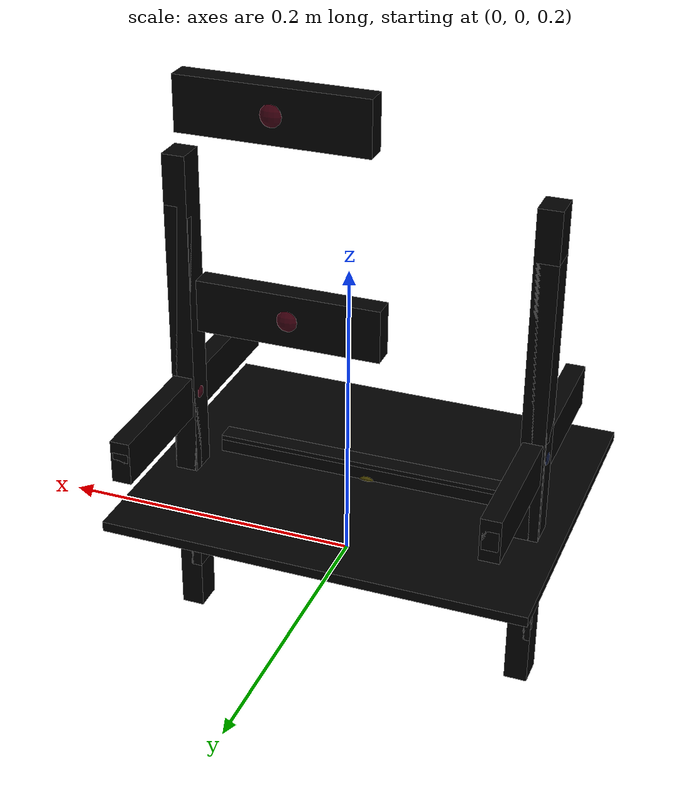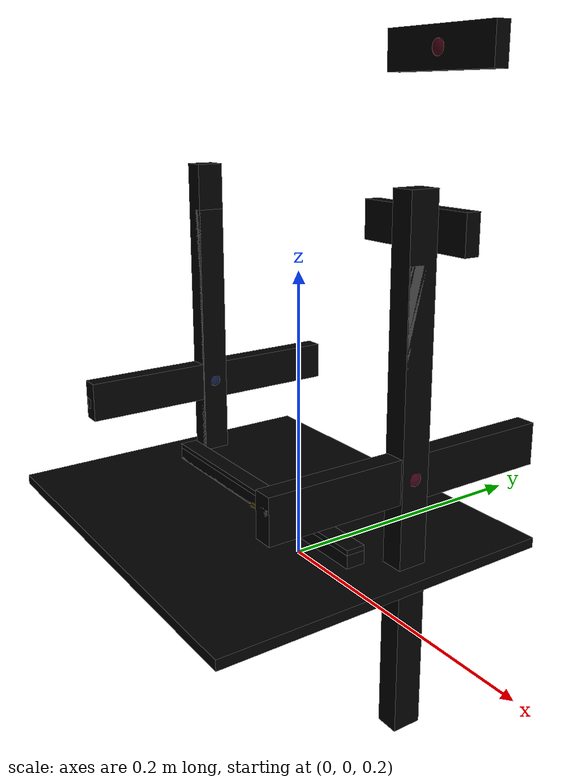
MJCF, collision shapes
<mujoco model="chair_ivar_0668">
  <custom>
    <numeric data="0.371978 0.069044 0.007593 0.500517 -0.499483 0.500514 0.499485" name="0_part0_initpos" />
    <numeric data="0.024402 -0.027272 0.018791 1.2e-05 -0.999999 0.001077 -0.0" name="4_part4_initpos" />
    <numeric data="0.017933 0.225411 0.014621 0.999111 0.002904 -0.000122 -0.042059" name="3_part3_initpos" />
    <numeric data="0.021304 0.340442 0.015788 0.997245 0.069882 0.001738 0.024808" name="2_part2_initpos" />
    <numeric data="-0.327291 0.05709 0.007492 0.500002 -0.499999 -0.499999 -0.500001" name="1_part1_initpos" />
  </custom>
  <asset>
    <mesh file="chair_ivar_0668/0.stl" name="part0" scale="0.00050688 0.00050688 0.00050688" />
    <mesh file="chair_ivar_0668/4.stl" name="part4" scale="0.00050688 0.00050688 0.00050688" />
    <mesh file="chair_ivar_0668/3.stl" name="part3" scale="0.00050688 0.00050688 0.00050688" />
    <mesh file="chair_ivar_0668/2.stl" name="part2" scale="0.00050688 0.00050688 0.00050688" />
    <mesh file="chair_ivar_0668/1.stl" name="part1" scale="0.00050688 0.00050688 0.00050688" />
  </asset>
  <worldbody>
  <inertial mass="5.0" diaginertia="0.05 0.05 0.05" pos="0 0 0" />
  <body name="combined_body" pos="0.11 0 0.29679392531250004" quat="1 0 0 0"><geom conaffinity="0" contype="0" density="0" mesh="part0" name="0_part0_mesh" pos="-0.0 0.0 0.0" rgba="0.82 0.71 0.55 1" type="mesh" quat="1 0 0 0" />
      <geom density="50" name="noviz_collision_0_part0_0" pos="-0.0 0.0 0.0" quat="1 0 0 0" rgba="0 0 0 0" size="0.007603199999999998 0.009630719999999997 0.1317888" solref="0.001 1" type="box" />
      <geom density="50" name="noviz_collision_0_part0_1" pos="-0.0 0.0 0.0" quat="1 0 0 0" rgba="0 0 0 0" size="0.007603199999999998 0.009630719999999997 0.164736" solref="0.001 1" type="box" />
      <geom density="50" name="noviz_collision_0_part0_2" pos="-0.0 0.0 0.0" quat="1 0 0 0" rgba="0 0 0 0" size="0.007603199999999998 0.0088704 0.12418559999999997" solref="0.001 1" type="box" />
      <geom density="50" name="noviz_collision_0_part0_3" pos="-0.0 0.0 0.0" quat="1 0 0 0" rgba="0 0 0 0" size="0.006335999999999999 0.09884159999999999 0.0139392" solref="0.001 1" type="box" />
      <geom density="50" name="noviz_collision_0_part0_4" pos="-0.0 0.0 0.0" quat="1 0 0 0" rgba="0 0 0 0" size="0.005068799999999999 0.09884159999999999 0.006335999999999999" solref="0.001 1" type="box" />
      <site name="0_part0_horizontal_radius_site" pos="-0.0 0.0 0.0" quat="1 0 0 0" rgba="0 0 0 0" size="0.0088" />
      <site name="0_part0_top_site" pos="-0.0 0.0 0.0" quat="1 0 0 0" rgba="0 0 0 0" size="0.0088" />
      <site name="0_part0_bottom_site" pos="-0.0 0.0 0.0" quat="1 0 0 0" rgba="0 0 0 0" size="0.0088" />
      <site name="0_part0_corner_site8" pos="-0.0 0.0 0.0" quat="1 0 0 0" rgba="0 0 0 0" size="0.010137599999999998" />
      <site name="0_part0_corner_site7" pos="-0.0 0.0 0.0" quat="1 0 0 0" rgba="0 0 0 0" size="0.010137599999999998" />
      <site name="0_part0_corner_site6" pos="-0.0 0.0 0.0" quat="1 0 0 0" rgba="0 0 0 0" size="0.010137599999999998" />
      <site name="0_part0_corner_site5" pos="-0.0 0.0 0.0" quat="1 0 0 0" rgba="0 0 0 0" size="0.010137599999999998" />
      <site name="0_part0_corner_site4" pos="-0.0 0.0 0.0" quat="1 0 0 0" rgba="0 0 0 0" size="0.010137599999999998" />
      <site name="0_part0_corner_site3" pos="-0.0 0.0 0.0" quat="1 0 0 0" rgba="0 0 0 0" size="0.010137599999999998" />
      <site name="0_part0_corner_site2" pos="-0.0 0.0 0.0" quat="1 0 0 0" rgba="0 0 0 0" size="0.010137599999999998" />
      <site name="0_part0_corner_site1" pos="-0.0 0.0 0.0" quat="1 0 0 0" rgba="0 0 0 0" size="0.010137599999999998" />
      <site name="lleg-back,0,conn_site2" pos="-0.0 0.0 0.0" quat="1 0 0 0" rgba="0.9019 0.0980 0.2941 0.3" size="0.0088" />
      <site name="lleg-back,0,conn_site1" pos="-0.0 0.0 0.0" quat="1 0 0 0" rgba="0.9019 0.0980 0.2941 0.3" size="0.0088" />
      <site name="lleg-seat,0,conn_site1" pos="-0.0 0.0 0.0" quat="1 0 0 0" rgba="0.2352 0.7058 0.2941 0.3" size="0.0088" />
    <geom conaffinity="0" contype="0" density="0" mesh="part4" name="4_part4_mesh" pos="-0.115872764806656 -0.026949470625791998 -0.05861101639219199" rgba="0.82 0.71 0.55 1" type="mesh" quat="1 0 0 0" />
      <geom density="50" name="noviz_collision_4_part4_0" pos="-0.115872764806656 -0.026949470625791998 -0.05861101639219199" quat="1 0 0 0" rgba="0 0 0 0" size="0.138403584 0.114048 0.00329472" solref="0.001 1" type="box" />
      <geom density="50" name="noviz_collision_4_part4_1" pos="-0.115872764806656 -0.026949470625791998 -0.05861101639219199" quat="1 0 0 0" rgba="0 0 0 0" size="0.10391039999999999 0.006335999999999999 0.011911679999999997" solref="0.001 1" type="box" />
      <geom density="50" name="noviz_collision_4_part4_2" pos="-0.115872764806656 -0.026949470625791998 -0.05861101639219199" quat="1 0 0 0" rgba="0 0 0 0" size="0.10391039999999999 0.006335999999999999 0.015206399999999997" solref="0.001 1" type="box" />
      <geom density="50" name="noviz_collision_4_part4_3" pos="-0.115872764806656 -0.026949470625791998 -0.05861101639219199" quat="1 0 0 0" rgba="0 0 0 0" size="0.10391039999999999 0.005068799999999999 0.00329472" solref="0.001 1" type="box" />
      <site name="4_part4_horizontal_radius_site" pos="-0.115872764806656 -0.026949470625791998 -0.05861101639219199" quat="1 0 0 0" rgba="0 0 0 0" size="0.0088" />
      <site name="4_part4_top_site" pos="-0.115872764806656 -0.026949470625791998 -0.05861101639219199" quat="1 0 0 0" rgba="0 0 0 0" size="0.0088" />
      <site name="4_part4_bottom_site" pos="-0.115872764806656 -0.026949470625791998 -0.05861101639219199" quat="1 0 0 0" rgba="0 0 0 0" size="0.0088" />
      <site name="4_part4_corner_site8" pos="-0.115872764806656 -0.026949470625791998 -0.05861101639219199" quat="1 0 0 0" rgba="0 0 0 0" size="0.010137599999999998" />
      <site name="4_part4_corner_site7" pos="-0.115872764806656 -0.026949470625791998 -0.05861101639219199" quat="1 0 0 0" rgba="0 0 0 0" size="0.010137599999999998" />
      <site name="4_part4_corner_site6" pos="-0.115872764806656 -0.026949470625791998 -0.05861101639219199" quat="1 0 0 0" rgba="0 0 0 0" size="0.010137599999999998" />
      <site name="4_part4_corner_site5" pos="-0.115872764806656 -0.026949470625791998 -0.05861101639219199" quat="1 0 0 0" rgba="0 0 0 0" size="0.010137599999999998" />
      <site name="4_part4_corner_site4" pos="-0.115872764806656 -0.026949470625791998 -0.05861101639219199" quat="1 0 0 0" rgba="0 0 0 0" size="0.010137599999999998" />
      <site name="4_part4_corner_site3" pos="-0.115872764806656 -0.026949470625791998 -0.05861101639219199" quat="1 0 0 0" rgba="0 0 0 0" size="0.010137599999999998" />
      <site name="4_part4_corner_site2" pos="-0.115872764806656 -0.026949470625791998 -0.05861101639219199" quat="1 0 0 0" rgba="0 0 0 0" size="0.010137599999999998" />
      <site name="4_part4_corner_site1" pos="-0.115872764806656 -0.026949470625791998 -0.05861101639219199" quat="1 0 0 0" rgba="0 0 0 0" size="0.010137599999999998" />
      <site name="seat-rleg,0,conn_site1" pos="-0.115872764806656 -0.026949470625791998 -0.05861101639219199" quat="1 0 0 0" rgba="1.0 0.8823 0.0980 0.3" size="0.0088" />
      <site name="seat-lleg,0,conn_site1" pos="-0.115872764806656 -0.026949470625791998 -0.05861101639219199" quat="1 0 0 0" rgba="0.2352 0.7058 0.2941 0.3" size="0.0088" />
    <geom conaffinity="0" contype="0" density="0" mesh="part3" name="3_part3_mesh" pos="-0.115872961577472 0.12518058795264 0.244362872590848" rgba="0.82 0.71 0.55 1" type="mesh" quat="1 0 0 0" />
      <geom density="50" name="noviz_collision_3_part3_0" pos="-0.115872961577472 0.12518058795264 0.244362872590848" quat="1 0 0 0" rgba="0 0 0 0" size="0.05322239999999999 0.006335999999999999 0.015206399999999997" solref="0.001 1" type="box" />
      <geom density="50" name="noviz_collision_3_part3_1" pos="-0.115872961577472 0.12518058795264 0.244362872590848" quat="1 0 0 0" rgba="0 0 0 0" size="0.05322239999999999 0.006335999999999999 0.015206399999999997" solref="0.001 1" type="box" />
      <site name="3_part3_horizontal_radius_site" pos="-0.115872961577472 0.12518058795264 0.244362872590848" quat="1 0 0 0" rgba="0 0 0 0" size="0.0088" />
      <site name="3_part3_top_site" pos="-0.115872961577472 0.12518058795264 0.244362872590848" quat="1 0 0 0" rgba="0 0 0 0" size="0.0088" />
      <site name="3_part3_bottom_site" pos="-0.115872961577472 0.12518058795264 0.244362872590848" quat="1 0 0 0" rgba="0 0 0 0" size="0.0088" />
      <site name="3_part3_corner_site8" pos="-0.115872961577472 0.12518058795264 0.244362872590848" quat="1 0 0 0" rgba="0 0 0 0" size="0.010137599999999998" />
      <site name="3_part3_corner_site7" pos="-0.115872961577472 0.12518058795264 0.244362872590848" quat="1 0 0 0" rgba="0 0 0 0" size="0.010137599999999998" />
      <site name="3_part3_corner_site6" pos="-0.115872961577472 0.12518058795264 0.244362872590848" quat="1 0 0 0" rgba="0 0 0 0" size="0.010137599999999998" />
      <site name="3_part3_corner_site5" pos="-0.115872961577472 0.12518058795264 0.244362872590848" quat="1 0 0 0" rgba="0 0 0 0" size="0.010137599999999998" />
      <site name="3_part3_corner_site4" pos="-0.115872961577472 0.12518058795264 0.244362872590848" quat="1 0 0 0" rgba="0 0 0 0" size="0.010137599999999998" />
      <site name="3_part3_corner_site3" pos="-0.115872961577472 0.12518058795264 0.244362872590848" quat="1 0 0 0" rgba="0 0 0 0" size="0.010137599999999998" />
      <site name="3_part3_corner_site2" pos="-0.115872961577472 0.12518058795264 0.244362872590848" quat="1 0 0 0" rgba="0 0 0 0" size="0.010137599999999998" />
      <site name="3_part3_corner_site1" pos="-0.115872961577472 0.12518058795264 0.244362872590848" quat="1 0 0 0" rgba="0 0 0 0" size="0.010137599999999998" />
      <site name="back-lleg,0,conn_site2" pos="-0.115872961577472 0.12518058795264 0.244362872590848" quat="1 0 0 0" rgba="0.9019 0.0980 0.2941 0.3" size="0.0088" />
      <site name="back-rleg,0,conn_site1" pos="-0.115872961577472 0.12518058795264 0.244362872590848" quat="1 0 0 0" rgba="0.2627 0.3882 0.8470 0.3" size="0.0088" />
    <geom conaffinity="0" contype="0" density="0" mesh="part2" name="2_part2_mesh" pos="-0.115872961577472 0.10729661295513598 0.12332352378931201" rgba="0.82 0.71 0.55 1" type="mesh" quat="1 0 0 0" />
      <geom density="50" name="noviz_collision_2_part2_0" pos="-0.115872961577472 0.10729661295513598 0.12332352378931201" quat="1 0 0 0" rgba="0 0 0 0" size="0.05322239999999999 0.006335999999999999 0.015206399999999997" solref="0.001 1" type="box" />
      <geom density="50" name="noviz_collision_2_part2_1" pos="-0.115872961577472 0.10729661295513598 0.12332352378931201" quat="1 0 0 0" rgba="0 0 0 0" size="0.05322239999999999 0.006335999999999999 0.015206399999999997" solref="0.001 1" type="box" />
      <site name="2_part2_horizontal_radius_site" pos="-0.115872961577472 0.10729661295513598 0.12332352378931201" quat="1 0 0 0" rgba="0 0 0 0" size="0.0088" />
      <site name="2_part2_top_site" pos="-0.115872961577472 0.10729661295513598 0.12332352378931201" quat="1 0 0 0" rgba="0 0 0 0" size="0.0088" />
      <site name="2_part2_bottom_site" pos="-0.115872961577472 0.10729661295513598 0.12332352378931201" quat="1 0 0 0" rgba="0 0 0 0" size="0.0088" />
      <site name="2_part2_corner_site8" pos="-0.115872961577472 0.10729661295513598 0.12332352378931201" quat="1 0 0 0" rgba="0 0 0 0" size="0.010137599999999998" />
      <site name="2_part2_corner_site7" pos="-0.115872961577472 0.10729661295513598 0.12332352378931201" quat="1 0 0 0" rgba="0 0 0 0" size="0.010137599999999998" />
      <site name="2_part2_corner_site6" pos="-0.115872961577472 0.10729661295513598 0.12332352378931201" quat="1 0 0 0" rgba="0 0 0 0" size="0.010137599999999998" />
      <site name="2_part2_corner_site5" pos="-0.115872961577472 0.10729661295513598 0.12332352378931201" quat="1 0 0 0" rgba="0 0 0 0" size="0.010137599999999998" />
      <site name="2_part2_corner_site4" pos="-0.115872961577472 0.10729661295513598 0.12332352378931201" quat="1 0 0 0" rgba="0 0 0 0" size="0.010137599999999998" />
      <site name="2_part2_corner_site3" pos="-0.115872961577472 0.10729661295513598 0.12332352378931201" quat="1 0 0 0" rgba="0 0 0 0" size="0.010137599999999998" />
      <site name="2_part2_corner_site2" pos="-0.115872961577472 0.10729661295513598 0.12332352378931201" quat="1 0 0 0" rgba="0 0 0 0" size="0.010137599999999998" />
      <site name="2_part2_corner_site1" pos="-0.115872961577472 0.10729661295513598 0.12332352378931201" quat="1 0 0 0" rgba="0 0 0 0" size="0.010137599999999998" />
      <site name="back-lleg,0,conn_site1" pos="-0.115872961577472 0.10729661295513598 0.12332352378931201" quat="1 0 0 0" rgba="0.9019 0.0980 0.2941 0.3" size="0.0088" />
      <site name="back-rleg,0,conn_site2" pos="-0.115872961577472 0.10729661295513598 0.12332352378931201" quat="1 0 0 0" rgba="0.2627 0.3882 0.8470 0.3" size="0.0088" />
    <geom conaffinity="0" contype="0" density="0" mesh="part1" name="1_part1_mesh" pos="-0.231745536 0.0 0.0" rgba="0.82 0.71 0.55 1" type="mesh" quat="1 0 0 0" />
      <geom density="50" name="noviz_collision_1_part1_0" pos="-0.231745536 0.0 0.0" quat="1 0 0 0" rgba="0 0 0 0" size="0.007603199999999998 0.009630719999999997 0.1317888" solref="0.001 1" type="box" />
      <geom density="50" name="noviz_collision_1_part1_1" pos="-0.231745536 0.0 0.0" quat="1 0 0 0" rgba="0 0 0 0" size="0.007603199999999998 0.009630719999999997 0.164736" solref="0.001 1" type="box" />
      <geom density="50" name="noviz_collision_1_part1_2" pos="-0.231745536 0.0 0.0" quat="1 0 0 0" rgba="0 0 0 0" size="0.007603199999999998 0.0088704 0.12418559999999997" solref="0.001 1" type="box" />
      <geom density="50" name="noviz_collision_1_part1_3" pos="-0.231745536 0.0 0.0" quat="1 0 0 0" rgba="0 0 0 0" size="0.006335999999999999 0.09884159999999999 0.0139392" solref="0.001 1" type="box" />
      <geom density="50" name="noviz_collision_1_part1_4" pos="-0.231745536 0.0 0.0" quat="1 0 0 0" rgba="0 0 0 0" size="0.005068799999999999 0.09884159999999999 0.006335999999999999" solref="0.001 1" type="box" />
      <site name="1_part1_horizontal_radius_site" pos="-0.231745536 0.0 0.0" quat="1 0 0 0" rgba="0 0 0 0" size="0.0088" />
      <site name="1_part1_top_site" pos="-0.231745536 0.0 0.0" quat="1 0 0 0" rgba="0 0 0 0" size="0.0088" />
      <site name="1_part1_bottom_site" pos="-0.231745536 0.0 0.0" quat="1 0 0 0" rgba="0 0 0 0" size="0.0088" />
      <site name="1_part1_corner_site8" pos="-0.231745536 0.0 0.0" quat="1 0 0 0" rgba="0 0 0 0" size="0.010137599999999998" />
      <site name="1_part1_corner_site7" pos="-0.231745536 0.0 0.0" quat="1 0 0 0" rgba="0 0 0 0" size="0.010137599999999998" />
      <site name="1_part1_corner_site6" pos="-0.231745536 0.0 0.0" quat="1 0 0 0" rgba="0 0 0 0" size="0.010137599999999998" />
      <site name="1_part1_corner_site5" pos="-0.231745536 0.0 0.0" quat="1 0 0 0" rgba="0 0 0 0" size="0.010137599999999998" />
      <site name="1_part1_corner_site4" pos="-0.231745536 0.0 0.0" quat="1 0 0 0" rgba="0 0 0 0" size="0.010137599999999998" />
      <site name="1_part1_corner_site3" pos="-0.231745536 0.0 0.0" quat="1 0 0 0" rgba="0 0 0 0" size="0.010137599999999998" />
      <site name="1_part1_corner_site2" pos="-0.231745536 0.0 0.0" quat="1 0 0 0" rgba="0 0 0 0" size="0.010137599999999998" />
      <site name="1_part1_corner_site1" pos="-0.231745536 0.0 0.0" quat="1 0 0 0" rgba="0 0 0 0" size="0.010137599999999998" />
      <site name="rleg-back,0,conn_site2" pos="-0.231745536 0.0 0.0" quat="1 0 0 0" rgba="0.2627 0.3882 0.8470 0.3" size="0.0088" />
      <site name="rleg-back,0,conn_site1" pos="-0.231745536 0.0 0.0" quat="1 0 0 0" rgba="0.2627 0.3882 0.8470 0.3" size="0.0088" />
      <site name="rleg-seat,0,conn_site1" pos="-0.231745536 0.0 0.0" quat="1 0 0 0" rgba="1.0 0.8823 0.0980 0.3" size="0.0088" />
    </body></worldbody><actuator />
  <sensor />
  <contact />
  <default />
</mujoco>
